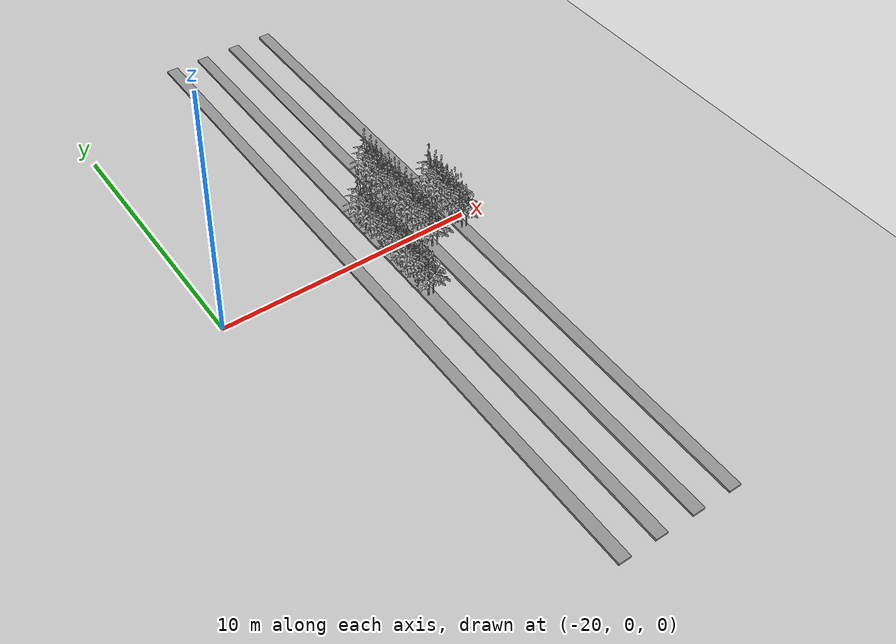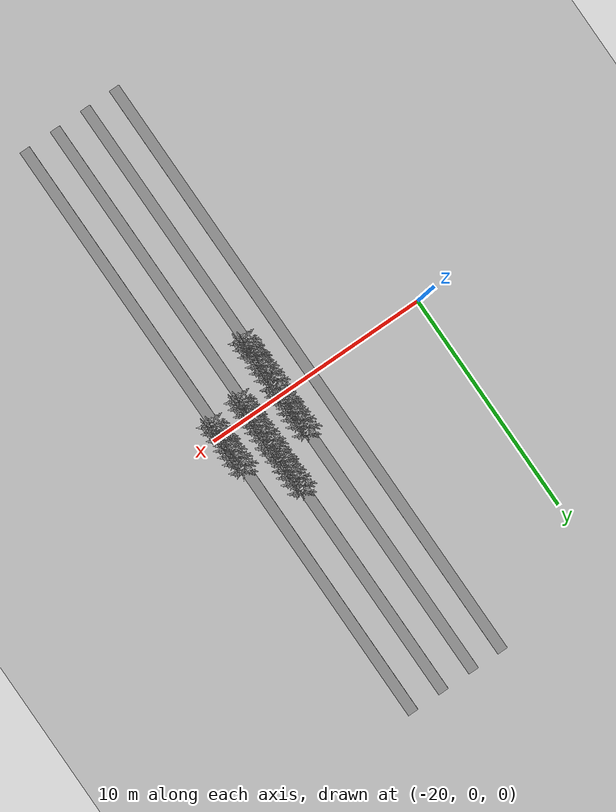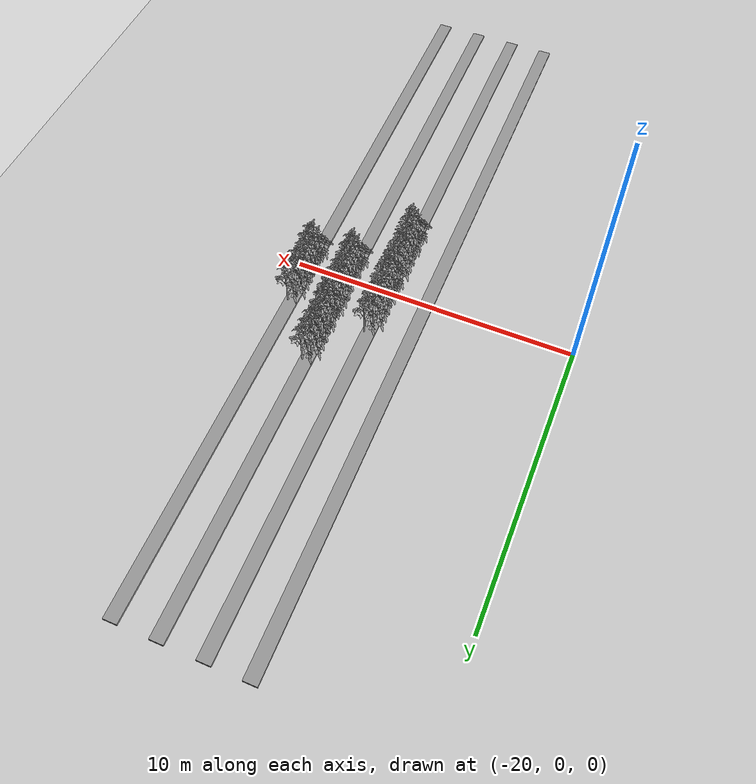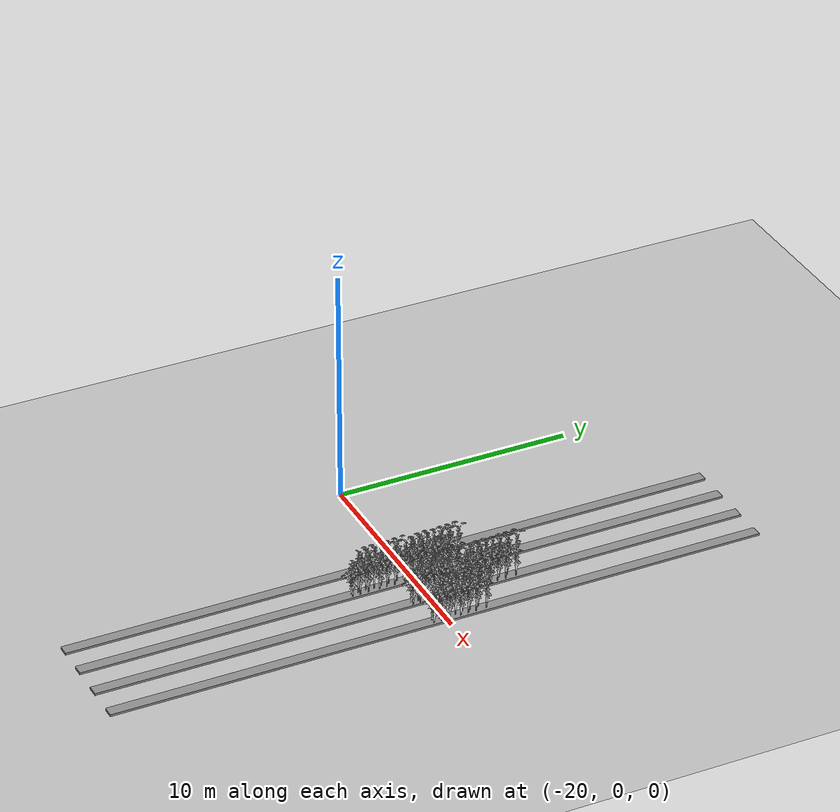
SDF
<sdf version="1.6">
 <world name="default">
  <model name="ground_plane">
   <static>1</static>
   <link name="link">
    <collision name="collision">
     <geometry><plane><normal>0 0 1</normal><size>100 100</size></plane></geometry>
     <surface>
      <contact><collide_bitmask>65535</collide_bitmask></contact>
      <friction><ode><mu>100</mu><mu2>50</mu2></ode></friction>
     </surface>
    </collision>
    <visual name="visual">
     <cast_shadows>0</cast_shadows>
     <geometry><plane><normal>0 0 1</normal><size>100 100</size></plane></geometry>
     <material>
      <script><uri>file://media/materials/scripts/gazebo.material</uri><name>Gazebo/Grey</name></script>
     </material>
    </visual>
   </link>
  </model>
  <model name="Middle_Plant_22">
   <model name="tomato_plant_big">
    <static>1</static>
    <link name="link">
     <collision name="collision">
      <geometry>
       <mesh><scale>5e-06 5e-06 6e-06</scale><uri>model://tomato_plant_big/meshes/tomato-plant.dae</uri></mesh>
      </geometry>
     </collision>
     <visual name="visual">
      <geometry>
       <mesh><scale>5e-06 5e-06 7e-06</scale><uri>model://tomato_plant_big/meshes/tomato-plant.dae</uri></mesh>
      </geometry>
     </visual>
    </link>
    <pose>0.085326 1.23023 0 0 -0 0</pose>
   </model>
   <model name="tomato_plant_big_0">
    <static>1</static>
    <link name="link">
     <collision name="collision">
      <geometry>
       <mesh><scale>5e-06 5e-06 6e-06</scale><uri>model://tomato_plant_big/meshes/tomato-plant.dae</uri></mesh>
      </geometry>
     </collision>
     <visual name="visual">
      <geometry>
       <mesh><scale>5e-06 5e-06 7e-06</scale><uri>model://tomato_plant_big/meshes/tomato-plant.dae</uri></mesh>
      </geometry>
     </visual>
    </link>
    <pose>-0.133881 0.970183 0 0 -0 0</pose>
   </model>
   <model name="tomato_plant_big_1">
    <static>1</static>
    <link name="link">
     <collision name="collision">
      <geometry>
       <mesh><scale>5e-06 5e-06 6e-06</scale><uri>model://tomato_plant_big/meshes/tomato-plant.dae</uri></mesh>
      </geometry>
     </collision>
     <visual name="visual">
      <geometry>
       <mesh><scale>5e-06 5e-06 7e-06</scale><uri>model://tomato_plant_big/meshes/tomato-plant.dae</uri></mesh>
      </geometry>
     </visual>
    </link>
    <pose>0.091162 0.792381 0 0 -0 0</pose>
   </model>
   <model name="tomato_plant_big_2">
    <static>1</static>
    <link name="link">
     <collision name="collision">
      <geometry>
       <mesh><scale>5e-06 5e-06 6e-06</scale><uri>model://tomato_plant_big/meshes/tomato-plant.dae</uri></mesh>
      </geometry>
     </collision>
     <visual name="visual">
      <geometry>
       <mesh><scale>5e-06 5e-06 7e-06</scale><uri>model://tomato_plant_big/meshes/tomato-plant.dae</uri></mesh>
      </geometry>
     </visual>
    </link>
    <pose>-0.099228 0.602587 0 0 -0 0</pose>
   </model>
   <model name="tomato_plant_big_3">
    <static>1</static>
    <link name="link">
     <collision name="collision">
      <geometry>
       <mesh><scale>5e-06 5e-06 6e-06</scale><uri>model://tomato_plant_big/meshes/tomato-plant.dae</uri></mesh>
      </geometry>
     </collision>
     <visual name="visual">
      <geometry>
       <mesh><scale>5e-06 5e-06 7e-06</scale><uri>model://tomato_plant_big/meshes/tomato-plant.dae</uri></mesh>
      </geometry>
     </visual>
    </link>
    <pose>0.083199 0.447645 0 0 -0 0</pose>
   </model>
   <model name="tomato_plant_big_4">
    <static>1</static>
    <link name="link">
     <collision name="collision">
      <geometry>
       <mesh><scale>5e-06 5e-06 6e-06</scale><uri>model://tomato_plant_big/meshes/tomato-plant.dae</uri></mesh>
      </geometry>
     </collision>
     <visual name="visual">
      <geometry>
       <mesh><scale>5e-06 5e-06 7e-06</scale><uri>model://tomato_plant_big/meshes/tomato-plant.dae</uri></mesh>
      </geometry>
     </visual>
    </link>
    <pose>-0.079499 0.263486 0 0 -0 0</pose>
   </model>
   <model name="tomato_plant_big_5">
    <static>1</static>
    <link name="link">
     <collision name="collision">
      <geometry>
       <mesh><scale>5e-06 5e-06 6e-06</scale><uri>model://tomato_plant_big/meshes/tomato-plant.dae</uri></mesh>
      </geometry>
     </collision>
     <visual name="visual">
      <geometry>
       <mesh><scale>5e-06 5e-06 7e-06</scale><uri>model://tomato_plant_big/meshes/tomato-plant.dae</uri></mesh>
      </geometry>
     </visual>
    </link>
    <pose>-0.033274 -0.040578 0 0 -0 0</pose>
   </model>
   <model name="tomato_plant_big_6">
    <static>1</static>
    <link name="link">
     <collision name="collision">
      <geometry>
       <mesh><scale>5e-06 5e-06 6e-06</scale><uri>model://tomato_plant_big/meshes/tomato-plant.dae</uri></mesh>
      </geometry>
     </collision>
     <visual name="visual">
      <geometry>
       <mesh><scale>5e-06 5e-06 7e-06</scale><uri>model://tomato_plant_big/meshes/tomato-plant.dae</uri></mesh>
      </geometry>
     </visual>
    </link>
    <pose>-0.07669 -0.382406 0 0 -0 0</pose>
   </model>
   <model name="tomato_plant_big_7">
    <static>1</static>
    <link name="link">
     <collision name="collision">
      <geometry>
       <mesh><scale>5e-06 5e-06 6e-06</scale><uri>model://tomato_plant_big/meshes/tomato-plant.dae</uri></mesh>
      </geometry>
     </collision>
     <visual name="visual">
      <geometry>
       <mesh><scale>5e-06 5e-06 7e-06</scale><uri>model://tomato_plant_big/meshes/tomato-plant.dae</uri></mesh>
      </geometry>
     </visual>
    </link>
    <pose>0.092388 -0.348189 0 0 -0 0</pose>
   </model>
   <model name="tomato_plant_big_8">
    <static>1</static>
    <link name="link">
     <collision name="collision">
      <geometry>
       <mesh><scale>5e-06 5e-06 6e-06</scale><uri>model://tomato_plant_big/meshes/tomato-plant.dae</uri></mesh>
      </geometry>
     </collision>
     <visual name="visual">
      <geometry>
       <mesh><scale>5e-06 5e-06 7e-06</scale><uri>model://tomato_plant_big/meshes/tomato-plant.dae</uri></mesh>
      </geometry>
     </visual>
    </link>
    <pose>0.099522 -0.697525 0 0 -0 0</pose>
   </model>
   <model name="tomato_plant_big_9">
    <static>1</static>
    <link name="link">
     <collision name="collision">
      <geometry>
       <mesh><scale>5e-06 5e-06 6e-06</scale><uri>model://tomato_plant_big/meshes/tomato-plant.dae</uri></mesh>
      </geometry>
     </collision>
     <visual name="visual">
      <geometry>
       <mesh><scale>5e-06 5e-06 7e-06</scale><uri>model://tomato_plant_big/meshes/tomato-plant.dae</uri></mesh>
      </geometry>
     </visual>
    </link>
    <pose>-0.050449 -0.712772 0 0 -0 0</pose>
   </model>
   <model name="tomato_plant_medium">
    <static>1</static>
    <link name="link">
     <collision name="collision">
      <geometry>
       <mesh><scale>5e-06 5e-06 6e-06</scale><uri>model://tomato_plant_medium/meshes/tomato-plant.dae</uri></mesh>
      </geometry>
     </collision>
     <visual name="visual">
      <geometry>
       <mesh><scale>5e-06 5e-06 6e-06</scale><uri>model://tomato_plant_medium/meshes/tomato-plant.dae</uri></mesh>
      </geometry>
     </visual>
    </link>
    <pose>0.078434 0.139842 0 0 -0 0</pose>
   </model>
   <model name="tomato_plant_medium_0">
    <static>1</static>
    <link name="link">
     <collision name="collision">
      <geometry>
       <mesh><scale>5e-06 5e-06 6e-06</scale><uri>model://tomato_plant_medium/meshes/tomato-plant.dae</uri></mesh>
      </geometry>
     </collision>
     <visual name="visual">
      <geometry>
       <mesh><scale>5e-06 5e-06 6e-06</scale><uri>model://tomato_plant_medium/meshes/tomato-plant.dae</uri></mesh>
      </geometry>
     </visual>
    </link>
    <pose>-0.079755 -0.244483 0 0 -0 0</pose>
   </model>
   <model name="tomato_plant_medium_1">
    <static>1</static>
    <link name="link">
     <collision name="collision">
      <geometry>
       <mesh><scale>5e-06 5e-06 6e-06</scale><uri>model://tomato_plant_medium/meshes/tomato-plant.dae</uri></mesh>
      </geometry>
     </collision>
     <visual name="visual">
      <geometry>
       <mesh><scale>5e-06 5e-06 6e-06</scale><uri>model://tomato_plant_medium/meshes/tomato-plant.dae</uri></mesh>
      </geometry>
     </visual>
    </link>
    <pose>0.106744 -1.01815 0 0 -0 0</pose>
   </model>
   <model name="tomato_plant_small">
    <static>1</static>
    <link name="link">
     <collision name="collision">
      <geometry>
       <mesh><scale>5e-06 5e-06 5e-06</scale><uri>model://tomato_plant_small/meshes/tomato-plant.dae</uri></mesh>
      </geometry>
     </collision>
     <visual name="visual">
      <geometry>
       <mesh><scale>5e-06 5e-06 5e-06</scale><uri>model://tomato_plant_small/meshes/tomato-plant.dae</uri></mesh>
      </geometry>
     </visual>
    </link>
    <pose>-0.083979 -1.00222 0 0 -0 0</pose>
   </model>
   <static>0</static>
   <pose>-13.323 -1.6586 0 0 -0 0</pose>
  </model>
  <model name="Middle_Plant_28">
   <model name="tomato_plant_big">
    <static>1</static>
    <link name="link">
     <collision name="collision">
      <geometry>
       <mesh><scale>5e-06 5e-06 6e-06</scale><uri>model://tomato_plant_big/meshes/tomato-plant.dae</uri></mesh>
      </geometry>
     </collision>
     <visual name="visual">
      <geometry>
       <mesh><scale>5e-06 5e-06 7e-06</scale><uri>model://tomato_plant_big/meshes/tomato-plant.dae</uri></mesh>
      </geometry>
     </visual>
    </link>
    <pose>0.085326 1.23023 0 0 -0 0</pose>
   </model>
   <model name="tomato_plant_big_0">
    <static>1</static>
    <link name="link">
     <collision name="collision">
      <geometry>
       <mesh><scale>5e-06 5e-06 6e-06</scale><uri>model://tomato_plant_big/meshes/tomato-plant.dae</uri></mesh>
      </geometry>
     </collision>
     <visual name="visual">
      <geometry>
       <mesh><scale>5e-06 5e-06 7e-06</scale><uri>model://tomato_plant_big/meshes/tomato-plant.dae</uri></mesh>
      </geometry>
     </visual>
    </link>
    <pose>-0.133881 0.970183 0 0 -0 0</pose>
   </model>
   <model name="tomato_plant_big_1">
    <static>1</static>
    <link name="link">
     <collision name="collision">
      <geometry>
       <mesh><scale>5e-06 5e-06 6e-06</scale><uri>model://tomato_plant_big/meshes/tomato-plant.dae</uri></mesh>
      </geometry>
     </collision>
     <visual name="visual">
      <geometry>
       <mesh><scale>5e-06 5e-06 7e-06</scale><uri>model://tomato_plant_big/meshes/tomato-plant.dae</uri></mesh>
      </geometry>
     </visual>
    </link>
    <pose>0.091162 0.792381 0 0 -0 0</pose>
   </model>
   <model name="tomato_plant_big_2">
    <static>1</static>
    <link name="link">
     <collision name="collision">
      <geometry>
       <mesh><scale>5e-06 5e-06 6e-06</scale><uri>model://tomato_plant_big/meshes/tomato-plant.dae</uri></mesh>
      </geometry>
     </collision>
     <visual name="visual">
      <geometry>
       <mesh><scale>5e-06 5e-06 7e-06</scale><uri>model://tomato_plant_big/meshes/tomato-plant.dae</uri></mesh>
      </geometry>
     </visual>
    </link>
    <pose>-0.099228 0.602587 0 0 -0 0</pose>
   </model>
   <model name="tomato_plant_big_3">
    <static>1</static>
    <link name="link">
     <collision name="collision">
      <geometry>
       <mesh><scale>5e-06 5e-06 6e-06</scale><uri>model://tomato_plant_big/meshes/tomato-plant.dae</uri></mesh>
      </geometry>
     </collision>
     <visual name="visual">
      <geometry>
       <mesh><scale>5e-06 5e-06 7e-06</scale><uri>model://tomato_plant_big/meshes/tomato-plant.dae</uri></mesh>
      </geometry>
     </visual>
    </link>
    <pose>0.083199 0.447645 0 0 -0 0</pose>
   </model>
   <model name="tomato_plant_big_4">
    <static>1</static>
    <link name="link">
     <collision name="collision">
      <geometry>
       <mesh><scale>5e-06 5e-06 6e-06</scale><uri>model://tomato_plant_big/meshes/tomato-plant.dae</uri></mesh>
      </geometry>
     </collision>
     <visual name="visual">
      <geometry>
       <mesh><scale>5e-06 5e-06 7e-06</scale><uri>model://tomato_plant_big/meshes/tomato-plant.dae</uri></mesh>
      </geometry>
     </visual>
    </link>
    <pose>-0.079499 0.263486 0 0 -0 0</pose>
   </model>
   <model name="tomato_plant_big_5">
    <static>1</static>
    <link name="link">
     <collision name="collision">
      <geometry>
       <mesh><scale>5e-06 5e-06 6e-06</scale><uri>model://tomato_plant_big/meshes/tomato-plant.dae</uri></mesh>
      </geometry>
     </collision>
     <visual name="visual">
      <geometry>
       <mesh><scale>5e-06 5e-06 7e-06</scale><uri>model://tomato_plant_big/meshes/tomato-plant.dae</uri></mesh>
      </geometry>
     </visual>
    </link>
    <pose>-0.033274 -0.040578 0 0 -0 0</pose>
   </model>
   <model name="tomato_plant_big_6">
    <static>1</static>
    <link name="link">
     <collision name="collision">
      <geometry>
       <mesh><scale>5e-06 5e-06 6e-06</scale><uri>model://tomato_plant_big/meshes/tomato-plant.dae</uri></mesh>
      </geometry>
     </collision>
     <visual name="visual">
      <geometry>
       <mesh><scale>5e-06 5e-06 7e-06</scale><uri>model://tomato_plant_big/meshes/tomato-plant.dae</uri></mesh>
      </geometry>
     </visual>
    </link>
    <pose>-0.07669 -0.382406 0 0 -0 0</pose>
   </model>
   <model name="tomato_plant_big_7">
    <static>1</static>
    <link name="link">
     <collision name="collision">
      <geometry>
       <mesh><scale>5e-06 5e-06 6e-06</scale><uri>model://tomato_plant_big/meshes/tomato-plant.dae</uri></mesh>
      </geometry>
     </collision>
     <visual name="visual">
      <geometry>
       <mesh><scale>5e-06 5e-06 7e-06</scale><uri>model://tomato_plant_big/meshes/tomato-plant.dae</uri></mesh>
      </geometry>
     </visual>
    </link>
    <pose>0.092388 -0.348189 0 0 -0 0</pose>
   </model>
   <model name="tomato_plant_big_8">
    <static>1</static>
    <link name="link">
     <collision name="collision">
      <geometry>
       <mesh><scale>5e-06 5e-06 6e-06</scale><uri>model://tomato_plant_big/meshes/tomato-plant.dae</uri></mesh>
      </geometry>
     </collision>
     <visual name="visual">
      <geometry>
       <mesh><scale>5e-06 5e-06 7e-06</scale><uri>model://tomato_plant_big/meshes/tomato-plant.dae</uri></mesh>
      </geometry>
     </visual>
    </link>
    <pose>0.099522 -0.697525 0 0 -0 0</pose>
   </model>
   <model name="tomato_plant_big_9">
    <static>1</static>
    <link name="link">
     <collision name="collision">
      <geometry>
       <mesh><scale>5e-06 5e-06 6e-06</scale><uri>model://tomato_plant_big/meshes/tomato-plant.dae</uri></mesh>
      </geometry>
     </collision>
     <visual name="visual">
      <geometry>
       <mesh><scale>5e-06 5e-06 7e-06</scale><uri>model://tomato_plant_big/meshes/tomato-plant.dae</uri></mesh>
      </geometry>
     </visual>
    </link>
    <pose>-0.050449 -0.712772 0 0 -0 0</pose>
   </model>
   <model name="tomato_plant_medium">
    <static>1</static>
    <link name="link">
     <collision name="collision">
      <geometry>
       <mesh><scale>5e-06 5e-06 6e-06</scale><uri>model://tomato_plant_medium/meshes/tomato-plant.dae</uri></mesh>
      </geometry>
     </collision>
     <visual name="visual">
      <geometry>
       <mesh><scale>5e-06 5e-06 6e-06</scale><uri>model://tomato_plant_medium/meshes/tomato-plant.dae</uri></mesh>
      </geometry>
     </visual>
    </link>
    <pose>0.078434 0.139842 0 0 -0 0</pose>
   </model>
   <model name="tomato_plant_medium_0">
    <static>1</static>
    <link name="link">
     <collision name="collision">
      <geometry>
       <mesh><scale>5e-06 5e-06 6e-06</scale><uri>model://tomato_plant_medium/meshes/tomato-plant.dae</uri></mesh>
      </geometry>
     </collision>
     <visual name="visual">
      <geometry>
       <mesh><scale>5e-06 5e-06 6e-06</scale><uri>model://tomato_plant_medium/meshes/tomato-plant.dae</uri></mesh>
      </geometry>
     </visual>
    </link>
    <pose>-0.079755 -0.244483 0 0 -0 0</pose>
   </model>
   <model name="tomato_plant_medium_1">
    <static>1</static>
    <link name="link">
     <collision name="collision">
      <geometry>
       <mesh><scale>5e-06 5e-06 6e-06</scale><uri>model://tomato_plant_medium/meshes/tomato-plant.dae</uri></mesh>
      </geometry>
     </collision>
     <visual name="visual">
      <geometry>
       <mesh><scale>5e-06 5e-06 6e-06</scale><uri>model://tomato_plant_medium/meshes/tomato-plant.dae</uri></mesh>
      </geometry>
     </visual>
    </link>
    <pose>0.106744 -1.01815 0 0 -0 0</pose>
   </model>
   <model name="tomato_plant_small">
    <static>1</static>
    <link name="link">
     <collision name="collision">
      <geometry>
       <mesh><scale>5e-06 5e-06 5e-06</scale><uri>model://tomato_plant_small/meshes/tomato-plant.dae</uri></mesh>
      </geometry>
     </collision>
     <visual name="visual">
      <geometry>
       <mesh><scale>5e-06 5e-06 5e-06</scale><uri>model://tomato_plant_small/meshes/tomato-plant.dae</uri></mesh>
      </geometry>
     </visual>
    </link>
    <pose>-0.083979 -1.00222 0 0 -0 0</pose>
   </model>
   <static>0</static>
   <pose>-13.3089 0.59004 0 0 -0 0</pose>
  </model>
  <model name="Middle_Plant_42">
   <model name="tomato_plant_big">
    <static>1</static>
    <link name="link">
     <collision name="collision">
      <geometry>
       <mesh><scale>5e-06 5e-06 6e-06</scale><uri>model://tomato_plant_big/meshes/tomato-plant.dae</uri></mesh>
      </geometry>
     </collision>
     <visual name="visual">
      <geometry>
       <mesh><scale>5e-06 5e-06 7e-06</scale><uri>model://tomato_plant_big/meshes/tomato-plant.dae</uri></mesh>
      </geometry>
     </visual>
    </link>
    <pose>0.085326 1.23023 0 0 -0 0</pose>
   </model>
   <model name="tomato_plant_big_0">
    <static>1</static>
    <link name="link">
     <collision name="collision">
      <geometry>
       <mesh><scale>5e-06 5e-06 6e-06</scale><uri>model://tomato_plant_big/meshes/tomato-plant.dae</uri></mesh>
      </geometry>
     </collision>
     <visual name="visual">
      <geometry>
       <mesh><scale>5e-06 5e-06 7e-06</scale><uri>model://tomato_plant_big/meshes/tomato-plant.dae</uri></mesh>
      </geometry>
     </visual>
    </link>
    <pose>-0.133881 0.970183 0 0 -0 0</pose>
   </model>
   <model name="tomato_plant_big_1">
    <static>1</static>
    <link name="link">
     <collision name="collision">
      <geometry>
       <mesh><scale>5e-06 5e-06 6e-06</scale><uri>model://tomato_plant_big/meshes/tomato-plant.dae</uri></mesh>
      </geometry>
     </collision>
     <visual name="visual">
      <geometry>
       <mesh><scale>5e-06 5e-06 7e-06</scale><uri>model://tomato_plant_big/meshes/tomato-plant.dae</uri></mesh>
      </geometry>
     </visual>
    </link>
    <pose>0.091162 0.792381 0 0 -0 0</pose>
   </model>
   <model name="tomato_plant_big_2">
    <static>1</static>
    <link name="link">
     <collision name="collision">
      <geometry>
       <mesh><scale>5e-06 5e-06 6e-06</scale><uri>model://tomato_plant_big/meshes/tomato-plant.dae</uri></mesh>
      </geometry>
     </collision>
     <visual name="visual">
      <geometry>
       <mesh><scale>5e-06 5e-06 7e-06</scale><uri>model://tomato_plant_big/meshes/tomato-plant.dae</uri></mesh>
      </geometry>
     </visual>
    </link>
    <pose>-0.099228 0.602587 0 0 -0 0</pose>
   </model>
   <model name="tomato_plant_big_3">
    <static>1</static>
    <link name="link">
     <collision name="collision">
      <geometry>
       <mesh><scale>5e-06 5e-06 6e-06</scale><uri>model://tomato_plant_big/meshes/tomato-plant.dae</uri></mesh>
      </geometry>
     </collision>
     <visual name="visual">
      <geometry>
       <mesh><scale>5e-06 5e-06 7e-06</scale><uri>model://tomato_plant_big/meshes/tomato-plant.dae</uri></mesh>
      </geometry>
     </visual>
    </link>
    <pose>0.083199 0.447645 0 0 -0 0</pose>
   </model>
   <model name="tomato_plant_big_4">
    <static>1</static>
    <link name="link">
     <collision name="collision">
      <geometry>
       <mesh><scale>5e-06 5e-06 6e-06</scale><uri>model://tomato_plant_big/meshes/tomato-plant.dae</uri></mesh>
      </geometry>
     </collision>
     <visual name="visual">
      <geometry>
       <mesh><scale>5e-06 5e-06 7e-06</scale><uri>model://tomato_plant_big/meshes/tomato-plant.dae</uri></mesh>
      </geometry>
     </visual>
    </link>
    <pose>-0.079499 0.263486 0 0 -0 0</pose>
   </model>
   <model name="tomato_plant_big_5">
    <static>1</static>
    <link name="link">
     <collision name="collision">
      <geometry>
       <mesh><scale>5e-06 5e-06 6e-06</scale><uri>model://tomato_plant_big/meshes/tomato-plant.dae</uri></mesh>
      </geometry>
     </collision>
     <visual name="visual">
      <geometry>
       <mesh><scale>5e-06 5e-06 7e-06</scale><uri>model://tomato_plant_big/meshes/tomato-plant.dae</uri></mesh>
      </geometry>
     </visual>
    </link>
    <pose>-0.033274 -0.040578 0 0 -0 0</pose>
   </model>
   <model name="tomato_plant_big_6">
    <static>1</static>
    <link name="link">
     <collision name="collision">
      <geometry>
       <mesh><scale>5e-06 5e-06 6e-06</scale><uri>model://tomato_plant_big/meshes/tomato-plant.dae</uri></mesh>
      </geometry>
     </collision>
     <visual name="visual">
      <geometry>
       <mesh><scale>5e-06 5e-06 7e-06</scale><uri>model://tomato_plant_big/meshes/tomato-plant.dae</uri></mesh>
      </geometry>
     </visual>
    </link>
    <pose>-0.07669 -0.382406 0 0 -0 0</pose>
   </model>
   <model name="tomato_plant_big_7">
    <static>1</static>
    <link name="link">
     <collision name="collision">
      <geometry>
       <mesh><scale>5e-06 5e-06 6e-06</scale><uri>model://tomato_plant_big/meshes/tomato-plant.dae</uri></mesh>
      </geometry>
     </collision>
     <visual name="visual">
      <geometry>
       <mesh><scale>5e-06 5e-06 7e-06</scale><uri>model://tomato_plant_big/meshes/tomato-plant.dae</uri></mesh>
      </geometry>
     </visual>
    </link>
    <pose>0.092388 -0.348189 0 0 -0 0</pose>
   </model>
   <model name="tomato_plant_big_8">
    <static>1</static>
    <link name="link">
     <collision name="collision">
      <geometry>
       <mesh><scale>5e-06 5e-06 6e-06</scale><uri>model://tomato_plant_big/meshes/tomato-plant.dae</uri></mesh>
      </geometry>
     </collision>
     <visual name="visual">
      <geometry>
       <mesh><scale>5e-06 5e-06 7e-06</scale><uri>model://tomato_plant_big/meshes/tomato-plant.dae</uri></mesh>
      </geometry>
     </visual>
    </link>
    <pose>0.099522 -0.697525 0 0 -0 0</pose>
   </model>
   <model name="tomato_plant_big_9">
    <static>1</static>
    <link name="link">
     <collision name="collision">
      <geometry>
       <mesh><scale>5e-06 5e-06 6e-06</scale><uri>model://tomato_plant_big/meshes/tomato-plant.dae</uri></mesh>
      </geometry>
     </collision>
     <visual name="visual">
      <geometry>
       <mesh><scale>5e-06 5e-06 7e-06</scale><uri>model://tomato_plant_big/meshes/tomato-plant.dae</uri></mesh>
      </geometry>
     </visual>
    </link>
    <pose>-0.050449 -0.712772 0 0 -0 0</pose>
   </model>
   <model name="tomato_plant_medium">
    <static>1</static>
    <link name="link">
     <collision name="collision">
      <geometry>
       <mesh><scale>5e-06 5e-06 6e-06</scale><uri>model://tomato_plant_medium/meshes/tomato-plant.dae</uri></mesh>
      </geometry>
     </collision>
     <visual name="visual">
      <geometry>
       <mesh><scale>5e-06 5e-06 6e-06</scale><uri>model://tomato_plant_medium/meshes/tomato-plant.dae</uri></mesh>
      </geometry>
     </visual>
    </link>
    <pose>0.078434 0.139842 0 0 -0 0</pose>
   </model>
   <model name="tomato_plant_medium_0">
    <static>1</static>
    <link name="link">
     <collision name="collision">
      <geometry>
       <mesh><scale>5e-06 5e-06 6e-06</scale><uri>model://tomato_plant_medium/meshes/tomato-plant.dae</uri></mesh>
      </geometry>
     </collision>
     <visual name="visual">
      <geometry>
       <mesh><scale>5e-06 5e-06 6e-06</scale><uri>model://tomato_plant_medium/meshes/tomato-plant.dae</uri></mesh>
      </geometry>
     </visual>
    </link>
    <pose>-0.079755 -0.244483 0 0 -0 0</pose>
   </model>
   <model name="tomato_plant_medium_1">
    <static>1</static>
    <link name="link">
     <collision name="collision">
      <geometry>
       <mesh><scale>5e-06 5e-06 6e-06</scale><uri>model://tomato_plant_medium/meshes/tomato-plant.dae</uri></mesh>
      </geometry>
     </collision>
     <visual name="visual">
      <geometry>
       <mesh><scale>5e-06 5e-06 6e-06</scale><uri>model://tomato_plant_medium/meshes/tomato-plant.dae</uri></mesh>
      </geometry>
     </visual>
    </link>
    <pose>0.106744 -1.01815 0 0 -0 0</pose>
   </model>
   <model name="tomato_plant_small">
    <static>1</static>
    <link name="link">
     <collision name="collision">
      <geometry>
       <mesh><scale>5e-06 5e-06 5e-06</scale><uri>model://tomato_plant_small/meshes/tomato-plant.dae</uri></mesh>
      </geometry>
     </collision>
     <visual name="visual">
      <geometry>
       <mesh><scale>5e-06 5e-06 5e-06</scale><uri>model://tomato_plant_small/meshes/tomato-plant.dae</uri></mesh>
      </geometry>
     </visual>
    </link>
    <pose>-0.083979 -1.00222 0 0 -0 0</pose>
   </model>
   <static>0</static>
   <pose>-11.8216 0.18989 0 0 -0 0</pose>
  </model>
  <model name="Middle_Plant_43">
   <model name="tomato_plant_big">
    <static>1</static>
    <link name="link">
     <collision name="collision">
      <geometry>
       <mesh><scale>5e-06 5e-06 6e-06</scale><uri>model://tomato_plant_big/meshes/tomato-plant.dae</uri></mesh>
      </geometry>
     </collision>
     <visual name="visual">
      <geometry>
       <mesh><scale>5e-06 5e-06 7e-06</scale><uri>model://tomato_plant_big/meshes/tomato-plant.dae</uri></mesh>
      </geometry>
     </visual>
    </link>
    <pose>0.085326 1.23023 0 0 -0 0</pose>
   </model>
   <model name="tomato_plant_big_0">
    <static>1</static>
    <link name="link">
     <collision name="collision">
      <geometry>
       <mesh><scale>5e-06 5e-06 6e-06</scale><uri>model://tomato_plant_big/meshes/tomato-plant.dae</uri></mesh>
      </geometry>
     </collision>
     <visual name="visual">
      <geometry>
       <mesh><scale>5e-06 5e-06 7e-06</scale><uri>model://tomato_plant_big/meshes/tomato-plant.dae</uri></mesh>
      </geometry>
     </visual>
    </link>
    <pose>-0.133881 0.970183 0 0 -0 0</pose>
   </model>
   <model name="tomato_plant_big_1">
    <static>1</static>
    <link name="link">
     <collision name="collision">
      <geometry>
       <mesh><scale>5e-06 5e-06 6e-06</scale><uri>model://tomato_plant_big/meshes/tomato-plant.dae</uri></mesh>
      </geometry>
     </collision>
     <visual name="visual">
      <geometry>
       <mesh><scale>5e-06 5e-06 7e-06</scale><uri>model://tomato_plant_big/meshes/tomato-plant.dae</uri></mesh>
      </geometry>
     </visual>
    </link>
    <pose>0.091162 0.792381 0 0 -0 0</pose>
   </model>
   <model name="tomato_plant_big_2">
    <static>1</static>
    <link name="link">
     <collision name="collision">
      <geometry>
       <mesh><scale>5e-06 5e-06 6e-06</scale><uri>model://tomato_plant_big/meshes/tomato-plant.dae</uri></mesh>
      </geometry>
     </collision>
     <visual name="visual">
      <geometry>
       <mesh><scale>5e-06 5e-06 7e-06</scale><uri>model://tomato_plant_big/meshes/tomato-plant.dae</uri></mesh>
      </geometry>
     </visual>
    </link>
    <pose>-0.099228 0.602587 0 0 -0 0</pose>
   </model>
   <model name="tomato_plant_big_3">
    <static>1</static>
    <link name="link">
     <collision name="collision">
      <geometry>
       <mesh><scale>5e-06 5e-06 6e-06</scale><uri>model://tomato_plant_big/meshes/tomato-plant.dae</uri></mesh>
      </geometry>
     </collision>
     <visual name="visual">
      <geometry>
       <mesh><scale>5e-06 5e-06 7e-06</scale><uri>model://tomato_plant_big/meshes/tomato-plant.dae</uri></mesh>
      </geometry>
     </visual>
    </link>
    <pose>0.083199 0.447645 0 0 -0 0</pose>
   </model>
   <model name="tomato_plant_big_4">
    <static>1</static>
    <link name="link">
     <collision name="collision">
      <geometry>
       <mesh><scale>5e-06 5e-06 6e-06</scale><uri>model://tomato_plant_big/meshes/tomato-plant.dae</uri></mesh>
      </geometry>
     </collision>
     <visual name="visual">
      <geometry>
       <mesh><scale>5e-06 5e-06 7e-06</scale><uri>model://tomato_plant_big/meshes/tomato-plant.dae</uri></mesh>
      </geometry>
     </visual>
    </link>
    <pose>-0.079499 0.263486 0 0 -0 0</pose>
   </model>
   <model name="tomato_plant_big_5">
    <static>1</static>
    <link name="link">
     <collision name="collision">
      <geometry>
       <mesh><scale>5e-06 5e-06 6e-06</scale><uri>model://tomato_plant_big/meshes/tomato-plant.dae</uri></mesh>
      </geometry>
     </collision>
     <visual name="visual">
      <geometry>
       <mesh><scale>5e-06 5e-06 7e-06</scale><uri>model://tomato_plant_big/meshes/tomato-plant.dae</uri></mesh>
      </geometry>
     </visual>
    </link>
    <pose>-0.033274 -0.040578 0 0 -0 0</pose>
   </model>
   <model name="tomato_plant_big_6">
    <static>1</static>
    <link name="link">
     <collision name="collision">
      <geometry>
       <mesh><scale>5e-06 5e-06 6e-06</scale><uri>model://tomato_plant_big/meshes/tomato-plant.dae</uri></mesh>
      </geometry>
     </collision>
     <visual name="visual">
      <geometry>
       <mesh><scale>5e-06 5e-06 7e-06</scale><uri>model://tomato_plant_big/meshes/tomato-plant.dae</uri></mesh>
      </geometry>
     </visual>
    </link>
    <pose>-0.07669 -0.382406 0 0 -0 0</pose>
   </model>
   <model name="tomato_plant_big_7">
    <static>1</static>
    <link name="link">
     <collision name="collision">
      <geometry>
       <mesh><scale>5e-06 5e-06 6e-06</scale><uri>model://tomato_plant_big/meshes/tomato-plant.dae</uri></mesh>
      </geometry>
     </collision>
     <visual name="visual">
      <geometry>
       <mesh><scale>5e-06 5e-06 7e-06</scale><uri>model://tomato_plant_big/meshes/tomato-plant.dae</uri></mesh>
      </geometry>
     </visual>
    </link>
    <pose>0.092388 -0.348189 0 0 -0 0</pose>
   </model>
   <model name="tomato_plant_big_8">
    <static>1</static>
    <link name="link">
     <collision name="collision">
      <geometry>
       <mesh><scale>5e-06 5e-06 6e-06</scale><uri>model://tomato_plant_big/meshes/tomato-plant.dae</uri></mesh>
      </geometry>
     </collision>
     <visual name="visual">
      <geometry>
       <mesh><scale>5e-06 5e-06 7e-06</scale><uri>model://tomato_plant_big/meshes/tomato-plant.dae</uri></mesh>
      </geometry>
     </visual>
    </link>
    <pose>0.099522 -0.697525 0 0 -0 0</pose>
   </model>
   <model name="tomato_plant_big_9">
    <static>1</static>
    <link name="link">
     <collision name="collision">
      <geometry>
       <mesh><scale>5e-06 5e-06 6e-06</scale><uri>model://tomato_plant_big/meshes/tomato-plant.dae</uri></mesh>
      </geometry>
     </collision>
     <visual name="visual">
      <geometry>
       <mesh><scale>5e-06 5e-06 7e-06</scale><uri>model://tomato_plant_big/meshes/tomato-plant.dae</uri></mesh>
      </geometry>
     </visual>
    </link>
    <pose>-0.050449 -0.712772 0 0 -0 0</pose>
   </model>
   <model name="tomato_plant_medium">
    <static>1</static>
    <link name="link">
     <collision name="collision">
      <geometry>
       <mesh><scale>5e-06 5e-06 6e-06</scale><uri>model://tomato_plant_medium/meshes/tomato-plant.dae</uri></mesh>
      </geometry>
     </collision>
     <visual name="visual">
      <geometry>
       <mesh><scale>5e-06 5e-06 6e-06</scale><uri>model://tomato_plant_medium/meshes/tomato-plant.dae</uri></mesh>
      </geometry>
     </visual>
    </link>
    <pose>0.078434 0.139842 0 0 -0 0</pose>
   </model>
   <model name="tomato_plant_medium_0">
    <static>1</static>
    <link name="link">
     <collision name="collision">
      <geometry>
       <mesh><scale>5e-06 5e-06 6e-06</scale><uri>model://tomato_plant_medium/meshes/tomato-plant.dae</uri></mesh>
      </geometry>
     </collision>
     <visual name="visual">
      <geometry>
       <mesh><scale>5e-06 5e-06 6e-06</scale><uri>model://tomato_plant_medium/meshes/tomato-plant.dae</uri></mesh>
      </geometry>
     </visual>
    </link>
    <pose>-0.079755 -0.244483 0 0 -0 0</pose>
   </model>
   <model name="tomato_plant_medium_1">
    <static>1</static>
    <link name="link">
     <collision name="collision">
      <geometry>
       <mesh><scale>5e-06 5e-06 6e-06</scale><uri>model://tomato_plant_medium/meshes/tomato-plant.dae</uri></mesh>
      </geometry>
     </collision>
     <visual name="visual">
      <geometry>
       <mesh><scale>5e-06 5e-06 6e-06</scale><uri>model://tomato_plant_medium/meshes/tomato-plant.dae</uri></mesh>
      </geometry>
     </visual>
    </link>
    <pose>0.106744 -1.01815 0 0 -0 0</pose>
   </model>
   <model name="tomato_plant_small">
    <static>1</static>
    <link name="link">
     <collision name="collision">
      <geometry>
       <mesh><scale>5e-06 5e-06 5e-06</scale><uri>model://tomato_plant_small/meshes/tomato-plant.dae</uri></mesh>
      </geometry>
     </collision>
     <visual name="visual">
      <geometry>
       <mesh><scale>5e-06 5e-06 5e-06</scale><uri>model://tomato_plant_small/meshes/tomato-plant.dae</uri></mesh>
      </geometry>
     </visual>
    </link>
    <pose>-0.083979 -1.00222 0 0 -0 0</pose>
   </model>
   <static>0</static>
   <pose>-10.3705 0.37501 0 0 -0 0</pose>
  </model>
  <model name="Middle_Plant_44">
   <model name="tomato_plant_big">
    <static>1</static>
    <link name="link">
     <collision name="collision">
      <geometry>
       <mesh><scale>5e-06 5e-06 6e-06</scale><uri>model://tomato_plant_big/meshes/tomato-plant.dae</uri></mesh>
      </geometry>
     </collision>
     <visual name="visual">
      <geometry>
       <mesh><scale>5e-06 5e-06 7e-06</scale><uri>model://tomato_plant_big/meshes/tomato-plant.dae</uri></mesh>
      </geometry>
     </visual>
    </link>
    <pose>0.085326 1.23023 0 0 -0 0</pose>
   </model>
   <model name="tomato_plant_big_0">
    <static>1</static>
    <link name="link">
     <collision name="collision">
      <geometry>
       <mesh><scale>5e-06 5e-06 6e-06</scale><uri>model://tomato_plant_big/meshes/tomato-plant.dae</uri></mesh>
      </geometry>
     </collision>
     <visual name="visual">
      <geometry>
       <mesh><scale>5e-06 5e-06 7e-06</scale><uri>model://tomato_plant_big/meshes/tomato-plant.dae</uri></mesh>
      </geometry>
     </visual>
    </link>
    <pose>-0.133881 0.970183 0 0 -0 0</pose>
   </model>
   <model name="tomato_plant_big_1">
    <static>1</static>
    <link name="link">
     <collision name="collision">
      <geometry>
       <mesh><scale>5e-06 5e-06 6e-06</scale><uri>model://tomato_plant_big/meshes/tomato-plant.dae</uri></mesh>
      </geometry>
     </collision>
     <visual name="visual">
      <geometry>
       <mesh><scale>5e-06 5e-06 7e-06</scale><uri>model://tomato_plant_big/meshes/tomato-plant.dae</uri></mesh>
      </geometry>
     </visual>
    </link>
    <pose>0.091162 0.792381 0 0 -0 0</pose>
   </model>
   <model name="tomato_plant_big_2">
    <static>1</static>
    <link name="link">
     <collision name="collision">
      <geometry>
       <mesh><scale>5e-06 5e-06 6e-06</scale><uri>model://tomato_plant_big/meshes/tomato-plant.dae</uri></mesh>
      </geometry>
     </collision>
     <visual name="visual">
      <geometry>
       <mesh><scale>5e-06 5e-06 7e-06</scale><uri>model://tomato_plant_big/meshes/tomato-plant.dae</uri></mesh>
      </geometry>
     </visual>
    </link>
    <pose>-0.099228 0.602587 0 0 -0 0</pose>
   </model>
   <model name="tomato_plant_big_3">
    <static>1</static>
    <link name="link">
     <collision name="collision">
      <geometry>
       <mesh><scale>5e-06 5e-06 6e-06</scale><uri>model://tomato_plant_big/meshes/tomato-plant.dae</uri></mesh>
      </geometry>
     </collision>
     <visual name="visual">
      <geometry>
       <mesh><scale>5e-06 5e-06 7e-06</scale><uri>model://tomato_plant_big/meshes/tomato-plant.dae</uri></mesh>
      </geometry>
     </visual>
    </link>
    <pose>0.083199 0.447645 0 0 -0 0</pose>
   </model>
   <model name="tomato_plant_big_4">
    <static>1</static>
    <link name="link">
     <collision name="collision">
      <geometry>
       <mesh><scale>5e-06 5e-06 6e-06</scale><uri>model://tomato_plant_big/meshes/tomato-plant.dae</uri></mesh>
      </geometry>
     </collision>
     <visual name="visual">
      <geometry>
       <mesh><scale>5e-06 5e-06 7e-06</scale><uri>model://tomato_plant_big/meshes/tomato-plant.dae</uri></mesh>
      </geometry>
     </visual>
    </link>
    <pose>-0.079499 0.263486 0 0 -0 0</pose>
   </model>
   <model name="tomato_plant_big_5">
    <static>1</static>
    <link name="link">
     <collision name="collision">
      <geometry>
       <mesh><scale>5e-06 5e-06 6e-06</scale><uri>model://tomato_plant_big/meshes/tomato-plant.dae</uri></mesh>
      </geometry>
     </collision>
     <visual name="visual">
      <geometry>
       <mesh><scale>5e-06 5e-06 7e-06</scale><uri>model://tomato_plant_big/meshes/tomato-plant.dae</uri></mesh>
      </geometry>
     </visual>
    </link>
    <pose>-0.033274 -0.040578 0 0 -0 0</pose>
   </model>
   <model name="tomato_plant_big_6">
    <static>1</static>
    <link name="link">
     <collision name="collision">
      <geometry>
       <mesh><scale>5e-06 5e-06 6e-06</scale><uri>model://tomato_plant_big/meshes/tomato-plant.dae</uri></mesh>
      </geometry>
     </collision>
     <visual name="visual">
      <geometry>
       <mesh><scale>5e-06 5e-06 7e-06</scale><uri>model://tomato_plant_big/meshes/tomato-plant.dae</uri></mesh>
      </geometry>
     </visual>
    </link>
    <pose>-0.07669 -0.382406 0 0 -0 0</pose>
   </model>
   <model name="tomato_plant_big_7">
    <static>1</static>
    <link name="link">
     <collision name="collision">
      <geometry>
       <mesh><scale>5e-06 5e-06 6e-06</scale><uri>model://tomato_plant_big/meshes/tomato-plant.dae</uri></mesh>
      </geometry>
     </collision>
     <visual name="visual">
      <geometry>
       <mesh><scale>5e-06 5e-06 7e-06</scale><uri>model://tomato_plant_big/meshes/tomato-plant.dae</uri></mesh>
      </geometry>
     </visual>
    </link>
    <pose>0.092388 -0.348189 0 0 -0 0</pose>
   </model>
   <model name="tomato_plant_big_8">
    <static>1</static>
    <link name="link">
     <collision name="collision">
      <geometry>
       <mesh><scale>5e-06 5e-06 6e-06</scale><uri>model://tomato_plant_big/meshes/tomato-plant.dae</uri></mesh>
      </geometry>
     </collision>
     <visual name="visual">
      <geometry>
       <mesh><scale>5e-06 5e-06 7e-06</scale><uri>model://tomato_plant_big/meshes/tomato-plant.dae</uri></mesh>
      </geometry>
     </visual>
    </link>
    <pose>0.099522 -0.697525 0 0 -0 0</pose>
   </model>
   <model name="tomato_plant_big_9">
    <static>1</static>
    <link name="link">
     <collision name="collision">
      <geometry>
       <mesh><scale>5e-06 5e-06 6e-06</scale><uri>model://tomato_plant_big/meshes/tomato-plant.dae</uri></mesh>
      </geometry>
     </collision>
     <visual name="visual">
      <geometry>
       <mesh><scale>5e-06 5e-06 7e-06</scale><uri>model://tomato_plant_big/meshes/tomato-plant.dae</uri></mesh>
      </geometry>
     </visual>
    </link>
    <pose>-0.050449 -0.712772 0 0 -0 0</pose>
   </model>
   <model name="tomato_plant_medium">
    <static>1</static>
    <link name="link">
     <collision name="collision">
      <geometry>
       <mesh><scale>5e-06 5e-06 6e-06</scale><uri>model://tomato_plant_medium/meshes/tomato-plant.dae</uri></mesh>
      </geometry>
     </collision>
     <visual name="visual">
      <geometry>
       <mesh><scale>5e-06 5e-06 6e-06</scale><uri>model://tomato_plant_medium/meshes/tomato-plant.dae</uri></mesh>
      </geometry>
     </visual>
    </link>
    <pose>0.078434 0.139842 0 0 -0 0</pose>
   </model>
   <model name="tomato_plant_medium_0">
    <static>1</static>
    <link name="link">
     <collision name="collision">
      <geometry>
       <mesh><scale>5e-06 5e-06 6e-06</scale><uri>model://tomato_plant_medium/meshes/tomato-plant.dae</uri></mesh>
      </geometry>
     </collision>
     <visual name="visual">
      <geometry>
       <mesh><scale>5e-06 5e-06 6e-06</scale><uri>model://tomato_plant_medium/meshes/tomato-plant.dae</uri></mesh>
      </geometry>
     </visual>
    </link>
    <pose>-0.079755 -0.244483 0 0 -0 0</pose>
   </model>
   <model name="tomato_plant_medium_1">
    <static>1</static>
    <link name="link">
     <collision name="collision">
      <geometry>
       <mesh><scale>5e-06 5e-06 6e-06</scale><uri>model://tomato_plant_medium/meshes/tomato-plant.dae</uri></mesh>
      </geometry>
     </collision>
     <visual name="visual">
      <geometry>
       <mesh><scale>5e-06 5e-06 6e-06</scale><uri>model://tomato_plant_medium/meshes/tomato-plant.dae</uri></mesh>
      </geometry>
     </visual>
    </link>
    <pose>0.106744 -1.01815 0 0 -0 0</pose>
   </model>
   <model name="tomato_plant_small">
    <static>1</static>
    <link name="link">
     <collision name="collision">
      <geometry>
       <mesh><scale>5e-06 5e-06 5e-06</scale><uri>model://tomato_plant_small/meshes/tomato-plant.dae</uri></mesh>
      </geometry>
     </collision>
     <visual name="visual">
      <geometry>
       <mesh><scale>5e-06 5e-06 5e-06</scale><uri>model://tomato_plant_small/meshes/tomato-plant.dae</uri></mesh>
      </geometry>
     </visual>
    </link>
    <pose>-0.083979 -1.00222 0 0 -0 0</pose>
   </model>
   <static>0</static>
   <pose>-11.8424 2.38388 0 0 -0 0</pose>
  </model>
  <model name="Box_24x15W_clone_0">
   <link name="Wall">
    <pose>0 0 0.1985 0 -0 0</pose>
    <inertial>
     <mass>5</mass>
     <inertia><ixx>0.1022</ixx><iyy>0.2197</iyy><izz>0.1905</izz><ixy>0</ixy><ixz>0</ixz><iyz>0</iyz></inertia>
    </inertial>
    <collision name="Wall_Collision">
     <geometry><box><size>0.470639 27.6098 0.091294</size></box></geometry>
    </collision>
    <visual name="Wall_Visual">
     <geometry><box><size>0.470639 27.6098 0.091294</size></box></geometry>
     <material>
      <script><uri>file://media/materials/scripts/gazebo.material</uri><name>Gazebo/Grey</name></script>
      <ambient>1 1 1 1</ambient>
     </material>
    </visual>
   </link>
   <static>1</static>
   <pose>-14.7891 -0.233565 -0.139926 0 -0 0</pose>
  </model>
  <model name="Box_24x15W_clone_1">
   <link name="Wall">
    <pose>0 0 0.1985 0 -0 0</pose>
    <inertial>
     <mass>5</mass>
     <inertia><ixx>0.1022</ixx><iyy>0.2197</iyy><izz>0.1905</izz><ixy>0</ixy><ixz>0</ixz><iyz>0</iyz></inertia>
    </inertial>
    <collision name="Wall_Collision">
     <geometry><box><size>0.470639 27.6098 0.091294</size></box></geometry>
    </collision>
    <visual name="Wall_Visual">
     <geometry><box><size>0.470639 27.6098 0.091294</size></box></geometry>
     <material>
      <script><uri>file://media/materials/scripts/gazebo.material</uri><name>Gazebo/Grey</name></script>
      <ambient>1 1 1 1</ambient>
     </material>
    </visual>
   </link>
   <static>1</static>
   <pose>-13.3689 -0.233565 -0.139926 0 -0 0</pose>
  </model>
  <model name="Box_24x15W_clone_2">
   <link name="Wall">
    <pose>0 0 0.1985 0 -0 0</pose>
    <inertial>
     <mass>5</mass>
     <inertia><ixx>0.1022</ixx><iyy>0.2197</iyy><izz>0.1905</izz><ixy>0</ixy><ixz>0</ixz><iyz>0</iyz></inertia>
    </inertial>
    <collision name="Wall_Collision">
     <geometry><box><size>0.470639 27.6098 0.091294</size></box></geometry>
    </collision>
    <visual name="Wall_Visual">
     <geometry><box><size>0.470639 27.6098 0.091294</size></box></geometry>
     <material>
      <script><uri>file://media/materials/scripts/gazebo.material</uri><name>Gazebo/Grey</name></script>
      <ambient>1 1 1 1</ambient>
     </material>
    </visual>
   </link>
   <static>1</static>
   <pose>-11.89 -0.233565 -0.139926 0 -0 0</pose>
  </model>
  <model name="Box_24x15W_clone_3">
   <link name="Wall">
    <pose>0 0 0.1985 0 -0 0</pose>
    <inertial>
     <mass>5</mass>
     <inertia><ixx>0.1022</ixx><iyy>0.2197</iyy><izz>0.1905</izz><ixy>0</ixy><ixz>0</ixz><iyz>0</iyz></inertia>
    </inertial>
    <collision name="Wall_Collision">
     <geometry><box><size>0.470639 27.6098 0.091294</size></box></geometry>
    </collision>
    <visual name="Wall_Visual">
     <geometry><box><size>0.470639 27.6098 0.091294</size></box></geometry>
     <material>
      <script><uri>file://media/materials/scripts/gazebo.material</uri><name>Gazebo/Grey</name></script>
      <ambient>1 1 1 1</ambient>
     </material>
    </visual>
   </link>
   <static>1</static>
   <pose>-10.4049 -0.233565 -0.139926 0 -0 0</pose>
  </model>
 </world>
</sdf>
